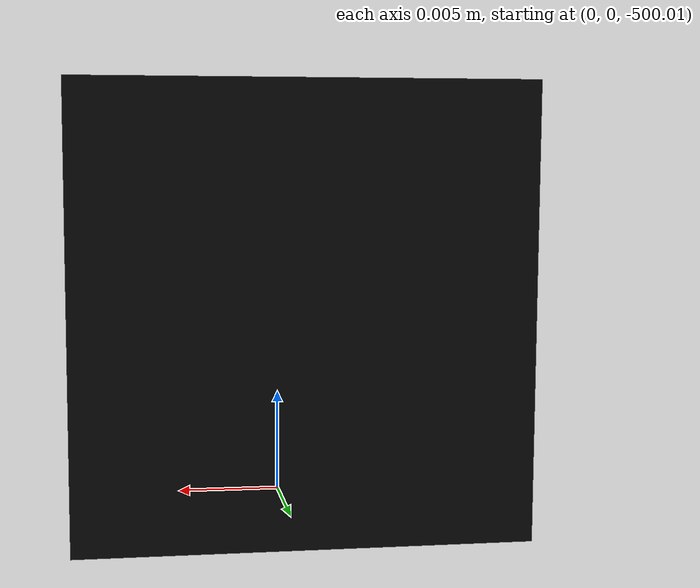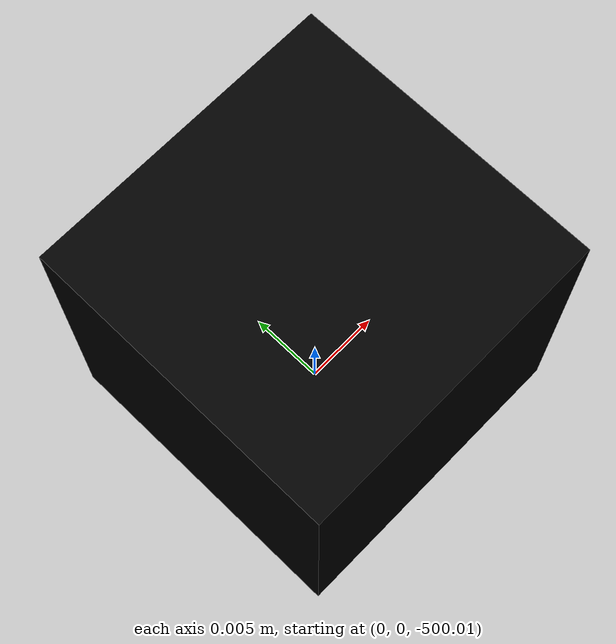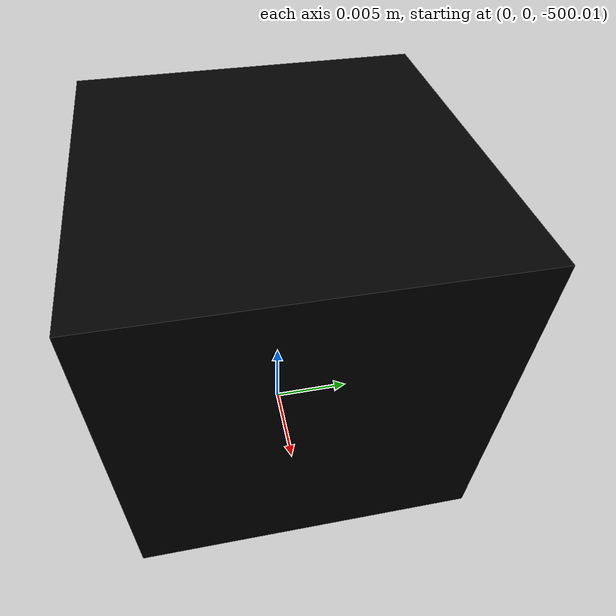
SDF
<?xml version="1.0" ?>
<sdf version="1.6">
  <!-- Placeholder: real meshes live under repo/models/... ; demo uses copied assets in iris_wind_quad*. -->
  <model name="px4_iris_assets_stub">
    <static>true</static>
    <link name="stub_link">
      <pose>0 0 -500 0 0 0</pose>
      <visual name="invisible">
        <geometry>
          <box><size>0.02 0.02 0.02</size></box>
        </geometry>
        <material>
          <ambient>0 0 0 0</ambient>
          <diffuse>0 0 0 0</diffuse>
        </material>
        <cast_shadows>false</cast_shadows>
      </visual>
    </link>
  </model>
</sdf>
